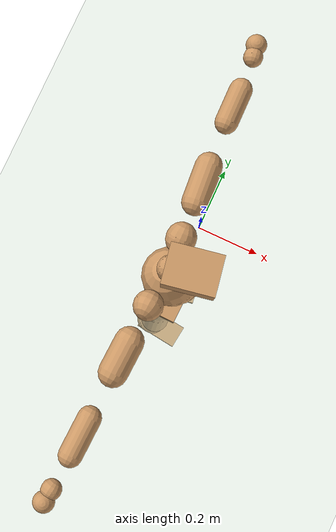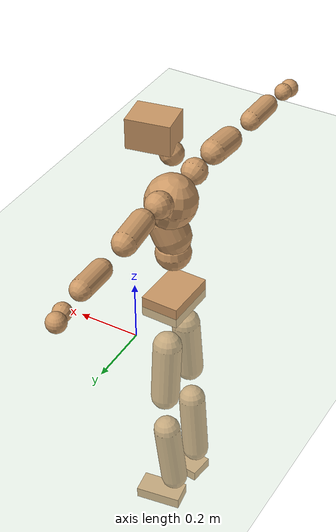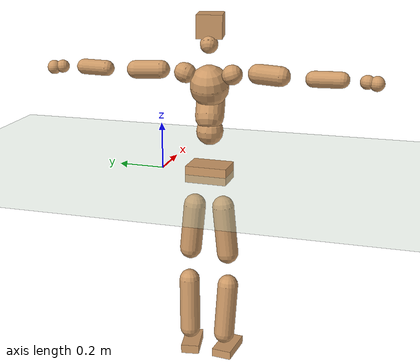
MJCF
<mujoco model="humanoid">
  <compiler coordinate="local" angle="radian"/>
  <default>
    <joint damping="0.0" armature="0.01" stiffness="0.0" limited="true"/>
    <geom conaffinity="1" condim="3" contype="7" margin="0.001" rgba="0.8 0.6 .4 1"/>
  </default>
  <asset>
    <texture type="skybox" builtin="gradient" rgb1=".4 .5 .6" rgb2="0 0 0" width="100" height="100"/>
    <texture builtin="flat" height="1278" mark="cross" markrgb="1 1 1" name="texgeom" random="0.01" rgb1="0.8 0.6 0.4" rgb2="0.8 0.6 0.4" type="cube" width="127"/>
    <texture builtin="checker" height="100" name="texplane" rgb1="0 0 0" rgb2="0.8 0.8 0.8" type="2d" width="100"/>
    <material name="MatPlane" reflectance="0.5" shininess="1" specular="1" texrepeat="60 60" texture="texplane"/>
    <material name="geom" texture="texgeom" texuniform="true"/>
  </asset>
  <worldbody>
    <light cutoff="100" diffuse="1 1 1" dir="-0 0 -1.3" directional="true" exponent="1" pos="0 0 1.3" specular=".1 .1 .1"/>
    <geom conaffinity="1" condim="3" name="floor" pos="0 0 0" rgba="0.8 0.9 0.8 1" size="100 100 .2" type="plane" material="MatPlane"/>
    <body name="Pelvis" pos="-0.0016 -0.2169 0.0121">
      <freejoint name="Pelvis"/>
      <geom type="box" contype="1" conaffinity="1" density="5359.374398" pos="-0.0062 0.0002 -0.0124" size="0.0636 0.0899 0.0361" quat="0.9999 0.0000 0.0000 -0.0143" name="Pelvis"/>
      <body name="L_Hip" pos="-0.0169 0.0573 -0.0878">
        <joint name="L_Hip_x" type="hinge" pos="0 0 0" axis="1 0 0" stiffness="1600" damping="160" armature="0.02" range="-180.0000 180.0000"/>
        <joint name="L_Hip_y" type="hinge" pos="0 0 0" axis="0 1 0" stiffness="1600" damping="160" armature="0.02" range="-180.0000 180.0000"/>
        <joint name="L_Hip_z" type="hinge" pos="0 0 0" axis="0 0 1" stiffness="1600" damping="160" armature="0.02" range="-180.0000 180.0000"/>
        <geom type="capsule" contype="1" conaffinity="1" density="2040.816327" size="0.0484" fromto="-0.0002 0.0074 -0.0780 -0.0008 0.0270 -0.2843" name="L_Hip"/>
        <body name="L_Knee" pos="-0.001 0.0344 -0.3623">
          <joint name="L_Knee_x" type="hinge" pos="0 0 0" axis="1 0 0" stiffness="1600" damping="160" armature="0.02" range="-180.0000 180.0000"/>
          <joint name="L_Knee_y" type="hinge" pos="0 0 0" axis="0 1 0" stiffness="1600" damping="160" armature="0.02" range="-180.0000 180.0000"/>
          <joint name="L_Knee_z" type="hinge" pos="0 0 0" axis="0 0 1" stiffness="1600" damping="160" armature="0.02" range="-180.0000 180.0000"/>
          <geom type="capsule" contype="1" conaffinity="1" density="1234.567901" size="0.0457" fromto="-0.0072 -0.0027 -0.0753 -0.0296 -0.0112 -0.3078" name="L_Knee"/>
          <body name="L_Ankle" pos="-0.0368 -0.014 -0.3831">
            <joint name="L_Ankle_x" type="hinge" pos="0 0 0" axis="1 0 0" stiffness="1600" damping="160" armature="0.02" range="-180.0000 180.0000"/>
            <joint name="L_Ankle_y" type="hinge" pos="0 0 0" axis="0 1 0" stiffness="1600" damping="160" armature="0.02" range="-180.0000 180.0000"/>
            <joint name="L_Ankle_z" type="hinge" pos="0 0 0" axis="0 0 1" stiffness="1600" damping="160" armature="0.02" range="-180.0000 180.0000"/>
            <geom type="box" contype="1" conaffinity="1" density="999.999998" pos="0.0569 0.0083 -0.0268" size="0.0787 0.0405 0.0204" quat="0.9974 0.0000 0.0000 0.0723" name="L_Ankle"/>
            <body name="L_Toe" pos="0.1137 0.0166 -0.0536">
              <joint name="L_Toe_x" type="hinge" pos="0 0 0" axis="1 0 0" stiffness="1000" damping="100" armature="0.02" range="-180.0000 180.0000"/>
              <joint name="L_Toe_y" type="hinge" pos="0 0 0" axis="0 1 0" stiffness="1000" damping="100" armature="0.02" range="-180.0000 180.0000"/>
              <joint name="L_Toe_z" type="hinge" pos="0 0 0" axis="0 0 1" stiffness="1000" damping="100" armature="0.02" range="-180.0000 180.0000"/>
              <geom type="box" contype="1" conaffinity="1" density="8609049.198353" pos="0.0000 0.0000 0.0263" size="0.0008 0.0021 0.001" quat="0.9968 0.0000 0.0000 0.0795" name="L_Toe"/>
            </body>
          </body>
        </body>
      </body>
      <body name="R_Hip" pos="-0.0122 -0.0545 -0.0871">
        <joint name="R_Hip_x" type="hinge" pos="0 0 0" axis="1 0 0" stiffness="1600" damping="160" armature="0.02" range="-180.0000 180.0000"/>
        <joint name="R_Hip_y" type="hinge" pos="0 0 0" axis="0 1 0" stiffness="1600" damping="160" armature="0.02" range="-180.0000 180.0000"/>
        <joint name="R_Hip_z" type="hinge" pos="0 0 0" axis="0 0 1" stiffness="1600" damping="160" armature="0.02" range="-180.0000 180.0000"/>
        <geom type="capsule" contype="1" conaffinity="1" density="2040.816327" size="0.0477" fromto="-0.0007 -0.0081 -0.0772 -0.0026 -0.0306 -0.2927" name="R_Hip"/>
        <body name="R_Knee" pos="-0.0033 -0.0387 -0.3699">
          <joint name="R_Knee_x" type="hinge" pos="0 0 0" axis="1 0 0" stiffness="1600" damping="160" armature="0.02" range="-180.0000 180.0000"/>
          <joint name="R_Knee_y" type="hinge" pos="0 0 0" axis="0 1 0" stiffness="1600" damping="160" armature="0.02" range="-180.0000 180.0000"/>
          <joint name="R_Knee_z" type="hinge" pos="0 0 0" axis="0 0 1" stiffness="1600" damping="160" armature="0.02" range="-180.0000 180.0000"/>
          <geom type="capsule" contype="1" conaffinity="1" density="1234.567901" size="0.0462" fromto="-0.0068 0.0034 -0.0759 -0.0277 0.0139 -0.3075" name="R_Knee"/>
          <body name="R_Ankle" pos="-0.0345 0.0174 -0.3834">
            <joint name="R_Ankle_x" type="hinge" pos="0 0 0" axis="1 0 0" stiffness="1600" damping="160" armature="0.02" range="-180.0000 180.0000"/>
            <joint name="R_Ankle_y" type="hinge" pos="0 0 0" axis="0 1 0" stiffness="1600" damping="160" armature="0.02" range="-180.0000 180.0000"/>
            <joint name="R_Ankle_z" type="hinge" pos="0 0 0" axis="0 0 1" stiffness="1600" damping="160" armature="0.02" range="-180.0000 180.0000"/>
            <geom type="box" contype="1" conaffinity="1" density="999.999951" pos="0.0584 -0.0071 -0.0225" size="0.082 0.0441 0.0189" quat="0.9982 0.0000 0.0000 -0.0601" name="R_Ankle"/>
            <body name="R_Toe" pos="0.1167 -0.0141 -0.045">
              <joint name="R_Toe_x" type="hinge" pos="0 0 0" axis="1 0 0" stiffness="1000" damping="100" armature="0.02" range="-180.0000 180.0000"/>
              <joint name="R_Toe_y" type="hinge" pos="0 0 0" axis="0 1 0" stiffness="1000" damping="100" armature="0.02" range="-180.0000 180.0000"/>
              <joint name="R_Toe_z" type="hinge" pos="0 0 0" axis="0 0 1" stiffness="1000" damping="100" armature="0.02" range="-180.0000 180.0000"/>
              <geom type="box" contype="1" conaffinity="1" density="8419824.997809" pos="0.0000 0.0000 0.0244" size="0.0009 0.0021 0.001" quat="0.9987 0.0000 0.0000 -0.0508" name="R_Toe"/>
            </body>
          </body>
        </body>
      </body>
      <body name="Torso" pos="-0.0082 -0.0018 0.1006">
        <joint name="Torso_x" type="hinge" pos="0 0 0" axis="1 0 0" stiffness="2000" damping="200" armature="0.02" range="-180.0000 180.0000"/>
        <joint name="Torso_y" type="hinge" pos="0 0 0" axis="0 1 0" stiffness="2000" damping="200" armature="0.02" range="-180.0000 180.0000"/>
        <joint name="Torso_z" type="hinge" pos="0 0 0" axis="0 0 1" stiffness="2000" damping="200" armature="0.02" range="-180.0000 180.0000"/>
        <geom type="capsule" contype="1" conaffinity="1" density="2040.816327" size="0.0582" fromto="0.0034 0.0019 0.0675 0.0035 0.0019 0.0695" name="Torso"/>
        <body name="Spine" pos="0.0069 0.0038 0.137">
          <joint name="Spine_x" type="hinge" pos="0 0 0" axis="1 0 0" stiffness="2000" damping="200" armature="0.02" range="-180.0000 180.0000"/>
          <joint name="Spine_y" type="hinge" pos="0 0 0" axis="0 1 0" stiffness="2000" damping="200" armature="0.02" range="-180.0000 180.0000"/>
          <joint name="Spine_z" type="hinge" pos="0 0 0" axis="0 0 1" stiffness="2000" damping="200" armature="0.02" range="-180.0000 180.0000"/>
          <geom type="capsule" contype="1" conaffinity="1" density="2040.816327" size="0.0614" fromto="0.0256 0.0023 0.0558 -0.0023 -0.0002 -0.0050" name="Spine"/>
          <body name="Chest" pos="0.0234 0.0021 0.0508">
            <joint name="Chest_x" type="hinge" pos="0 0 0" axis="1 0 0" stiffness="2000" damping="200" armature="0.02" range="-180.0000 180.0000"/>
            <joint name="Chest_y" type="hinge" pos="0 0 0" axis="0 1 0" stiffness="2000" damping="200" armature="0.02" range="-180.0000 180.0000"/>
            <joint name="Chest_z" type="hinge" pos="0 0 0" axis="0 0 1" stiffness="2000" damping="200" armature="0.02" range="-180.0000 180.0000"/>
            <geom type="capsule" contype="1" conaffinity="1" density="2040.816327" size="0.0828" fromto="-0.0245 -0.0013 0.0790 -0.0212 -0.0011 0.0682" name="Chest"/>
            <body name="Neck" pos="-0.053 -0.0042 0.212">
              <joint name="Neck_x" type="hinge" pos="0 0 0" axis="1 0 0" stiffness="1000" damping="100" armature="0.02" range="-180.0000 180.0000"/>
              <joint name="Neck_y" type="hinge" pos="0 0 0" axis="0 1 0" stiffness="1000" damping="100" armature="0.02" range="-180.0000 180.0000"/>
              <joint name="Neck_z" type="hinge" pos="0 0 0" axis="0 0 1" stiffness="1000" damping="100" armature="0.02" range="-180.0000 180.0000"/>
              <geom type="capsule" contype="1" conaffinity="1" density="1000" size="0.0378" fromto="0.0256 0.0038 0.0339 0.0268 0.0040 0.0355" name="Neck"/>
              <body name="Head" pos="0.0525 0.0078 0.0694">
                <joint name="Head_x" type="hinge" pos="0 0 0" axis="1 0 0" stiffness="1000" damping="100" armature="0.02" range="-180.0000 180.0000"/>
                <joint name="Head_y" type="hinge" pos="0 0 0" axis="0 1 0" stiffness="1000" damping="100" armature="0.02" range="-180.0000 180.0000"/>
                <joint name="Head_z" type="hinge" pos="0 0 0" axis="0 0 1" stiffness="1000" damping="100" armature="0.02" range="-180.0000 180.0000"/>
                <geom type="box" contype="1" conaffinity="1" density="2249.999879" pos="0.0272 0.0049 0.0357" size="0.0697 0.0542 0.0491" quat="0.9960 0.0000 0.0000 0.0890" name="Head"/>
              </body>
            </body>
            <body name="L_Thorax" pos="-0.0406 0.0625 0.1154">
              <joint name="L_Thorax_x" type="hinge" pos="0 0 0" axis="1 0 0" stiffness="1000" damping="100" armature="0.02" range="-180.0000 180.0000"/>
              <joint name="L_Thorax_y" type="hinge" pos="0 0 0" axis="0 1 0" stiffness="1000" damping="100" armature="0.02" range="-180.0000 180.0000"/>
              <joint name="L_Thorax_z" type="hinge" pos="0 0 0" axis="0 0 1" stiffness="1000" damping="100" armature="0.02" range="-180.0000 180.0000"/>
              <geom type="capsule" contype="1" conaffinity="1" density="1000" size="0.0424" fromto="-0.0005 0.0403 0.0133 -0.0004 0.0330 0.0109" name="L_Thorax"/>
              <body name="L_Shoulder" pos="-0.0009 0.0733 0.0241">
                <joint name="L_Shoulder_x" type="hinge" pos="0 0 0" axis="1 0 0" stiffness="1000" damping="100" armature="0.02" range="-720.0000 720.0000"/>
                <joint name="L_Shoulder_y" type="hinge" pos="0 0 0" axis="0 1 0" stiffness="1000" damping="100" armature="0.02" range="-720.0000 720.0000"/>
                <joint name="L_Shoulder_z" type="hinge" pos="0 0 0" axis="0 0 1" stiffness="1000" damping="100" armature="0.02" range="-720.0000 720.0000"/>
                <geom type="capsule" contype="1" conaffinity="1" density="1000" size="0.0386" fromto="-0.0054 0.0684 -0.0023 -0.0140 0.1753 -0.0058" name="L_Shoulder"/>
                <body name="L_Elbow" pos="-0.0194 0.2437 -0.0081">
                  <joint name="L_Elbow_x" type="hinge" pos="0 0 0" axis="1 0 0" stiffness="1000" damping="100" armature="0.02" range="-720.0000 720.0000"/>
                  <joint name="L_Elbow_y" type="hinge" pos="0 0 0" axis="0 1 0" stiffness="1000" damping="100" armature="0.02" range="-720.0000 720.0000"/>
                  <joint name="L_Elbow_z" type="hinge" pos="0 0 0" axis="0 0 1" stiffness="1000" damping="100" armature="0.02" range="-720.0000 720.0000"/>
                  <geom type="capsule" contype="1" conaffinity="1" density="1000" size="0.0327" fromto="-0.0010 0.0627 0.0019 -0.0025 0.1624 0.0048" name="L_Elbow"/>
                  <body name="L_Wrist" pos="-0.0035 0.2251 0.0067">
                    <joint name="L_Wrist_x" type="hinge" pos="0 0 0" axis="1 0 0" stiffness="600" damping="60" armature="0.02" range="-180.0000 180.0000"/>
                    <joint name="L_Wrist_y" type="hinge" pos="0 0 0" axis="0 1 0" stiffness="600" damping="60" armature="0.02" range="-180.0000 180.0000"/>
                    <joint name="L_Wrist_z" type="hinge" pos="0 0 0" axis="0 0 1" stiffness="600" damping="60" armature="0.02" range="-180.0000 180.0000"/>
                    <geom type="capsule" contype="1" conaffinity="1" density="1000" size="0.0275" fromto="-0.0061 0.0359 -0.0043 -0.0064 0.0378 -0.0045" name="L_Wrist"/>
                    <body name="L_Hand" pos="-0.0125 0.0737 -0.0088">
                      <joint name="L_Hand_x" type="hinge" pos="0 0 0" axis="1 0 0" stiffness="600" damping="60" armature="0.02" range="-180.0000 180.0000"/>
                      <joint name="L_Hand_y" type="hinge" pos="0 0 0" axis="0 1 0" stiffness="600" damping="60" armature="0.02" range="-180.0000 180.0000"/>
                      <joint name="L_Hand_z" type="hinge" pos="0 0 0" axis="0 0 1" stiffness="600" damping="60" armature="0.02" range="-180.0000 180.0000"/>
                      <geom type="sphere" contype="1" conaffinity="1" density="1000" size="0.0297" pos="0.0000 0.0000 0.0000" name="L_Hand"/>
                    </body>
                  </body>
                </body>
              </body>
            </body>
            <body name="R_Thorax" pos="-0.0436 -0.0657 0.1143">
              <joint name="R_Thorax_x" type="hinge" pos="0 0 0" axis="1 0 0" stiffness="1000" damping="100" armature="0.02" range="-180.0000 180.0000"/>
              <joint name="R_Thorax_y" type="hinge" pos="0 0 0" axis="0 1 0" stiffness="1000" damping="100" armature="0.02" range="-180.0000 180.0000"/>
              <joint name="R_Thorax_z" type="hinge" pos="0 0 0" axis="0 0 1" stiffness="1000" damping="100" armature="0.02" range="-180.0000 180.0000"/>
              <geom type="capsule" contype="1" conaffinity="1" density="1000" size="0.0419" fromto="-0.0017 -0.0393 0.0144 -0.0016 -0.0368 0.0135" name="R_Thorax"/>
              <body name="R_Shoulder" pos="-0.0032 -0.0761 0.028">
                <joint name="R_Shoulder_x" type="hinge" pos="0 0 0" axis="1 0 0" stiffness="1000" damping="100" armature="0.02" range="-720.0000 720.0000"/>
                <joint name="R_Shoulder_y" type="hinge" pos="0 0 0" axis="0 1 0" stiffness="1000" damping="100" armature="0.02" range="-720.0000 720.0000"/>
                <joint name="R_Shoulder_z" type="hinge" pos="0 0 0" axis="0 0 1" stiffness="1000" damping="100" armature="0.02" range="-720.0000 720.0000"/>
                <geom type="capsule" contype="1" conaffinity="1" density="1000" size="0.0411" fromto="-0.0036 -0.0709 -0.0038 -0.0083 -0.1646 -0.0087" name="R_Shoulder"/>
                <body name="R_Elbow" pos="-0.0119 -0.2355 -0.0125">
                  <joint name="R_Elbow_x" type="hinge" pos="0 0 0" axis="1 0 0" stiffness="1000" damping="100" armature="0.02" range="-720.0000 720.0000"/>
                  <joint name="R_Elbow_y" type="hinge" pos="0 0 0" axis="0 1 0" stiffness="1000" damping="100" armature="0.02" range="-720.0000 720.0000"/>
                  <joint name="R_Elbow_z" type="hinge" pos="0 0 0" axis="0 0 1" stiffness="1000" damping="100" armature="0.02" range="-720.0000 720.0000"/>
                  <geom type="capsule" contype="1" conaffinity="1" density="1000" size="0.0333" fromto="-0.0025 -0.0632 0.0015 -0.0069 -0.1731 0.0041" name="R_Elbow"/>
                  <body name="R_Wrist" pos="-0.0095 -0.2363 0.0056">
                    <joint name="R_Wrist_x" type="hinge" pos="0 0 0" axis="1 0 0" stiffness="600" damping="60" armature="0.02" range="-180.0000 180.0000"/>
                    <joint name="R_Wrist_y" type="hinge" pos="0 0 0" axis="0 1 0" stiffness="600" damping="60" armature="0.02" range="-180.0000 180.0000"/>
                    <joint name="R_Wrist_z" type="hinge" pos="0 0 0" axis="0 0 1" stiffness="600" damping="60" armature="0.02" range="-180.0000 180.0000"/>
                    <geom type="capsule" contype="1" conaffinity="1" density="1000" size="0.0286" fromto="-0.0046 -0.0368 -0.0033 -0.0049 -0.0387 -0.0034" name="R_Wrist"/>
                    <body name="R_Hand" pos="-0.0095 -0.0755 -0.0067">
                      <joint name="R_Hand_x" type="hinge" pos="0 0 0" axis="1 0 0" stiffness="600" damping="60" armature="0.02" range="-180.0000 180.0000"/>
                      <joint name="R_Hand_y" type="hinge" pos="0 0 0" axis="0 1 0" stiffness="600" damping="60" armature="0.02" range="-180.0000 180.0000"/>
                      <joint name="R_Hand_z" type="hinge" pos="0 0 0" axis="0 0 1" stiffness="600" damping="60" armature="0.02" range="-180.0000 180.0000"/>
                      <geom type="sphere" contype="1" conaffinity="1" density="1000" size="0.0303" pos="0.0000 0.0000 0.0000" name="R_Hand"/>
                    </body>
                  </body>
                </body>
              </body>
            </body>
          </body>
        </body>
      </body>
    </body>
  </worldbody>
  <actuator>
    <motor name="L_Hip_x" joint="L_Hip_x" gear="500"/>
    <motor name="L_Hip_y" joint="L_Hip_y" gear="500"/>
    <motor name="L_Hip_z" joint="L_Hip_z" gear="500"/>
    <motor name="L_Knee_x" joint="L_Knee_x" gear="500"/>
    <motor name="L_Knee_y" joint="L_Knee_y" gear="500"/>
    <motor name="L_Knee_z" joint="L_Knee_z" gear="500"/>
    <motor name="L_Ankle_x" joint="L_Ankle_x" gear="500"/>
    <motor name="L_Ankle_y" joint="L_Ankle_y" gear="500"/>
    <motor name="L_Ankle_z" joint="L_Ankle_z" gear="500"/>
    <motor name="L_Toe_x" joint="L_Toe_x" gear="500"/>
    <motor name="L_Toe_y" joint="L_Toe_y" gear="500"/>
    <motor name="L_Toe_z" joint="L_Toe_z" gear="500"/>
    <motor name="R_Hip_x" joint="R_Hip_x" gear="500"/>
    <motor name="R_Hip_y" joint="R_Hip_y" gear="500"/>
    <motor name="R_Hip_z" joint="R_Hip_z" gear="500"/>
    <motor name="R_Knee_x" joint="R_Knee_x" gear="500"/>
    <motor name="R_Knee_y" joint="R_Knee_y" gear="500"/>
    <motor name="R_Knee_z" joint="R_Knee_z" gear="500"/>
    <motor name="R_Ankle_x" joint="R_Ankle_x" gear="500"/>
    <motor name="R_Ankle_y" joint="R_Ankle_y" gear="500"/>
    <motor name="R_Ankle_z" joint="R_Ankle_z" gear="500"/>
    <motor name="R_Toe_x" joint="R_Toe_x" gear="500"/>
    <motor name="R_Toe_y" joint="R_Toe_y" gear="500"/>
    <motor name="R_Toe_z" joint="R_Toe_z" gear="500"/>
    <motor name="Torso_x" joint="Torso_x" gear="500"/>
    <motor name="Torso_y" joint="Torso_y" gear="500"/>
    <motor name="Torso_z" joint="Torso_z" gear="500"/>
    <motor name="Spine_x" joint="Spine_x" gear="500"/>
    <motor name="Spine_y" joint="Spine_y" gear="500"/>
    <motor name="Spine_z" joint="Spine_z" gear="500"/>
    <motor name="Chest_x" joint="Chest_x" gear="500"/>
    <motor name="Chest_y" joint="Chest_y" gear="500"/>
    <motor name="Chest_z" joint="Chest_z" gear="500"/>
    <motor name="Neck_x" joint="Neck_x" gear="500"/>
    <motor name="Neck_y" joint="Neck_y" gear="500"/>
    <motor name="Neck_z" joint="Neck_z" gear="500"/>
    <motor name="Head_x" joint="Head_x" gear="500"/>
    <motor name="Head_y" joint="Head_y" gear="500"/>
    <motor name="Head_z" joint="Head_z" gear="500"/>
    <motor name="L_Thorax_x" joint="L_Thorax_x" gear="500"/>
    <motor name="L_Thorax_y" joint="L_Thorax_y" gear="500"/>
    <motor name="L_Thorax_z" joint="L_Thorax_z" gear="500"/>
    <motor name="L_Shoulder_x" joint="L_Shoulder_x" gear="500"/>
    <motor name="L_Shoulder_y" joint="L_Shoulder_y" gear="500"/>
    <motor name="L_Shoulder_z" joint="L_Shoulder_z" gear="500"/>
    <motor name="L_Elbow_x" joint="L_Elbow_x" gear="500"/>
    <motor name="L_Elbow_y" joint="L_Elbow_y" gear="500"/>
    <motor name="L_Elbow_z" joint="L_Elbow_z" gear="500"/>
    <motor name="L_Wrist_x" joint="L_Wrist_x" gear="500"/>
    <motor name="L_Wrist_y" joint="L_Wrist_y" gear="500"/>
    <motor name="L_Wrist_z" joint="L_Wrist_z" gear="500"/>
    <motor name="L_Hand_x" joint="L_Hand_x" gear="500"/>
    <motor name="L_Hand_y" joint="L_Hand_y" gear="500"/>
    <motor name="L_Hand_z" joint="L_Hand_z" gear="500"/>
    <motor name="R_Thorax_x" joint="R_Thorax_x" gear="500"/>
    <motor name="R_Thorax_y" joint="R_Thorax_y" gear="500"/>
    <motor name="R_Thorax_z" joint="R_Thorax_z" gear="500"/>
    <motor name="R_Shoulder_x" joint="R_Shoulder_x" gear="500"/>
    <motor name="R_Shoulder_y" joint="R_Shoulder_y" gear="500"/>
    <motor name="R_Shoulder_z" joint="R_Shoulder_z" gear="500"/>
    <motor name="R_Elbow_x" joint="R_Elbow_x" gear="500"/>
    <motor name="R_Elbow_y" joint="R_Elbow_y" gear="500"/>
    <motor name="R_Elbow_z" joint="R_Elbow_z" gear="500"/>
    <motor name="R_Wrist_x" joint="R_Wrist_x" gear="500"/>
    <motor name="R_Wrist_y" joint="R_Wrist_y" gear="500"/>
    <motor name="R_Wrist_z" joint="R_Wrist_z" gear="500"/>
    <motor name="R_Hand_x" joint="R_Hand_x" gear="500"/>
    <motor name="R_Hand_y" joint="R_Hand_y" gear="500"/>
    <motor name="R_Hand_z" joint="R_Hand_z" gear="500"/>
  </actuator>
  <contact>
    <exclude body1="Torso" body2="Chest"/>
    <exclude body1="Head" body2="Chest"/>
    <exclude body1="R_Knee" body2="R_Toe"/>
    <exclude body1="R_Knee" body2="L_Ankle"/>
    <exclude body1="R_Knee" body2="L_Toe"/>
    <exclude body1="L_Knee" body2="L_Toe"/>
    <exclude body1="L_Knee" body2="R_Ankle"/>
    <exclude body1="L_Knee" body2="R_Toe"/>
    <exclude body1="L_Shoulder" body2="Chest"/>
    <exclude body1="R_Shoulder" body2="Chest"/>
  </contact>
  <sensor/>
  <size njmax="700" nconmax="700"/>
</mujoco>
